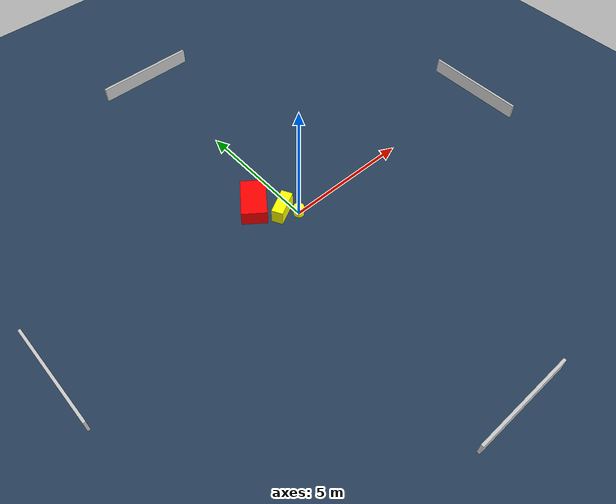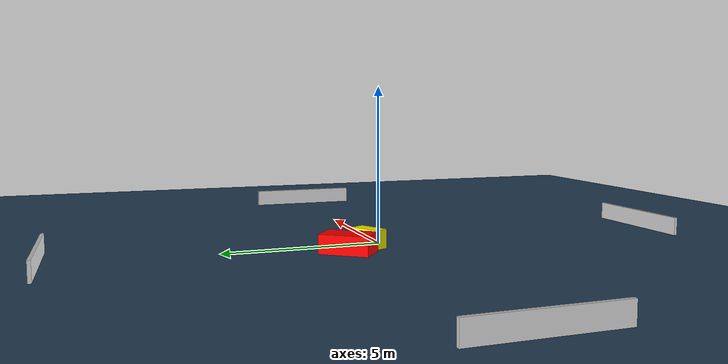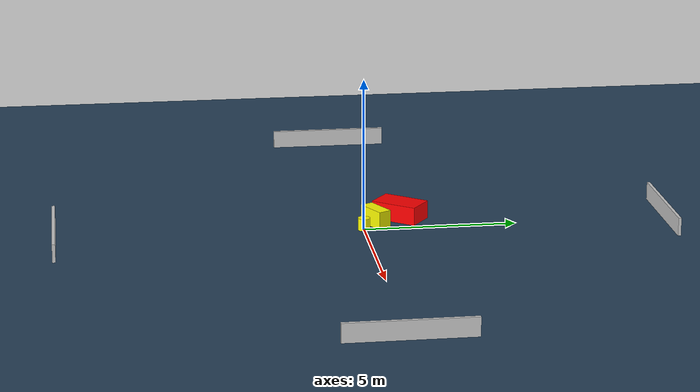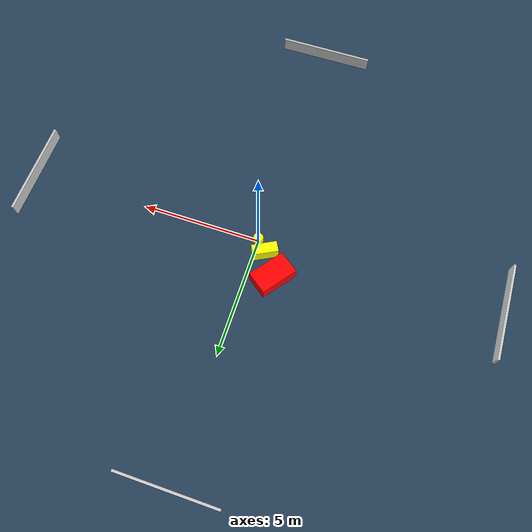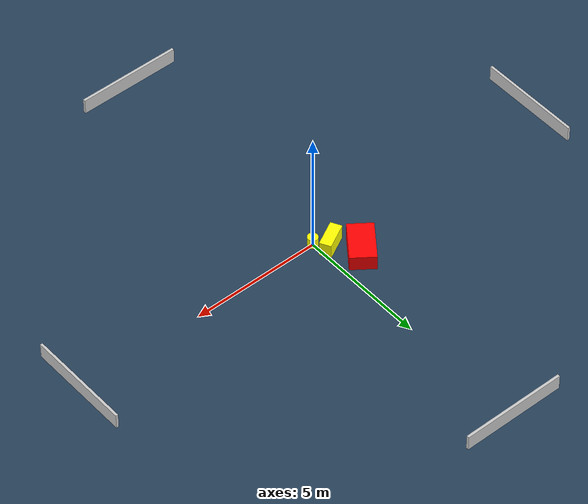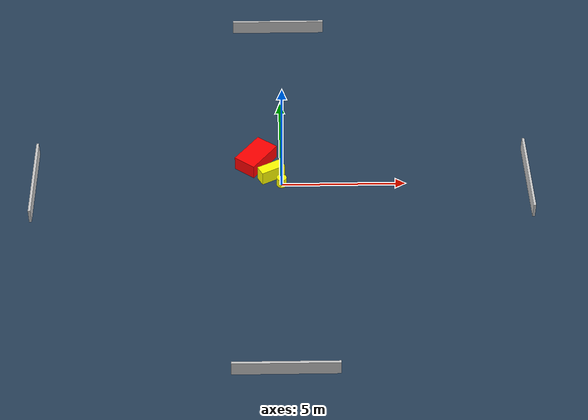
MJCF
<?xml version="1.0" ?>
<mujoco model="generated_environment">
  <option timestep="0.01" integrator="RK4" cone="elliptic"/>
  <default>
    <geom density="1"/>
  </default>
  <asset>
    <texture builtin="gradient" height="3072" name="skybox" rgb1="0.3 0.5 0.7" rgb2="0 0 0" type="skybox" width="512"/>
    <texture builtin="checker" height="300" name="groundplane" rgb1="0.2 0.3 0.4" rgb2="0.1 0.2 0.3" type="2d" width="300"/>
    <material name="groundplane" reflectance="0.2" texrepeat="5 5" texture="groundplane"/>
  </asset>
  <worldbody>
    <light dir="0 0 -1" directional="true" pos="0 0 1.5"/>
    <geom condim="3" friction="0.5 0.005 0.001" material="groundplane" name="floor" pos="0 0 0" size="0 0 0.05" type="plane"/>
    <body name="walls">
      <geom name="wall_1" condim="4" pos="-10.0 0.0 0.3" rgba="0.800000011920929 0.800000011920929 0.800000011920929 1.0" size="0.05 2.0 0.3" type="box"/>
      <geom name="wall_2" condim="4" pos="10.0 0.0 0.3" rgba="0.800000011920929 0.800000011920929 0.800000011920929 1.0" size="0.05 2.0 0.3" type="box"/>
      <geom name="wall_3" condim="4" pos="0.0 -10.0 0.3" rgba="0.800000011920929 0.800000011920929 0.800000011920929 1.0" size="2.0 0.05 0.3" type="box"/>
      <geom name="wall_4" condim="4" pos="0.0 10.0 0.3" rgba="0.800000011920929 0.800000011920929 0.800000011920929 1.0" size="2.0 0.05 0.3" type="box"/>
    </body>
    <body name="robot">
      <joint name="joint_x" type="slide" pos="0 0 0" axis="1 0 0"/>
      <joint name="joint_y" type="slide" pos="0 0 0" axis="0 1 0"/>
      <geom name="robot" type="cylinder" pos="0.0 0.0 0.2" size="0.2 0.2 0.0" mass="5.0" friction="1.0 0.005 0.0001" condim="4" rgba="1.0 1.0 0.0 1.0"/>
    </body>
    <body name="obstacle_1_movable">
      <geom name="obstacle_1_movable" condim="4" pos="-0.4155750049443471 0.44670458050337913 0.3" euler="0 0 207.95396242164068" friction="0.0 0.005 0.001" rgba="1.0 1.0 0.0 1.0" size="0.5194476041122214 0.21907135154030405 0.3" type="box" mass="0.1"/>
      <joint type="free"/>
    </body>
    <body name="obstacle_2_static">
      <geom name="obstacle_2_static" condim="4" pos="-1.0341285825546818 1.3321422510049898 0.3" euler="0 0 232.92550704816023" friction="0.0 0.005 0.001" rgba="1.0 0.0 0.0 1.0" size="0.7891160595867472 0.4793899826105996 0.3" type="box"/>
    </body>
  </worldbody>
  <actuator>
    <motor name="actuator_x" joint="joint_x" gear="1" ctrlrange="-1 1"/>
    <motor name="actuator_y" joint="joint_y" gear="1" ctrlrange="-1 1"/>
  </actuator>
</mujoco>
